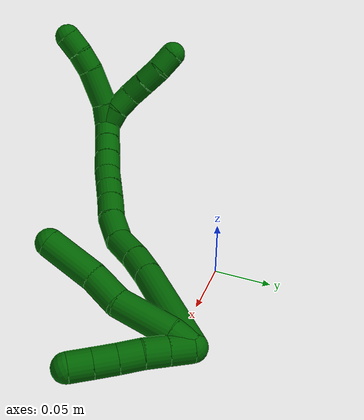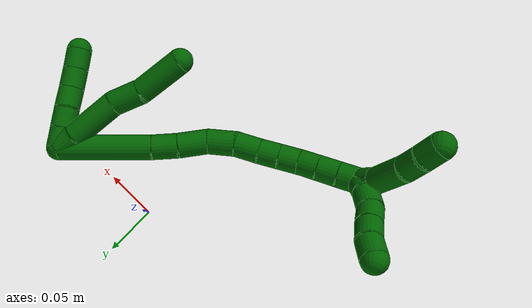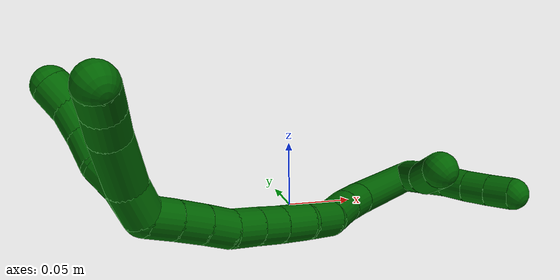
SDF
<sdf version="1.7">
 <world name="default">
  <model name="6">
   <static>0</static>
   <link name="6">
    <collision name="collision-cylinder-e_1_2_8">
     <pose>0.001683 0.008391 0.00524 -1.01253 0.168543 -0.093605</pose>
     <geometry><cylinder><radius>0.0125</radius><length>0.02007</length></cylinder></geometry>
     <surface>
      <friction><ode><mu>1.16</mu><mu2>1.16</mu2><slip1>0</slip1><slip2>0</slip2></ode></friction>
      <contact><ode><kp>1e+06</kp><kd>1</kd><max_vel>0</max_vel><min_depth>0.001</min_depth></ode></contact>
     </surface>
    </collision>
    <visual name="visual-cylinder-e_1_2_8">
     <pose>0.001683 0.008391 0.00524 -1.01253 0.168543 -0.093605</pose>
     <geometry><cylinder><radius>0.0125</radius><length>0.02007</length></cylinder></geometry>
     <material><ambient>0 0.392157 0.003922 1</ambient></material>
    </visual>
    <collision name="collision-cylinder-e_2_8_9">
     <pose>0.006981 0.0363 0.026186 -0.893214 0.143281 -0.068704</pose>
     <geometry><cylinder><radius>0.0125</radius><length>0.050624</length></cylinder></geometry>
     <surface>
      <friction><ode><mu>1.16</mu><mu2>1.16</mu2><slip1>0</slip1><slip2>0</slip2></ode></friction>
      <contact><ode><kp>1e+06</kp><kd>1</kd><max_vel>0</max_vel><min_depth>0.001</min_depth></ode></contact>
     </surface>
    </collision>
    <visual name="visual-cylinder-e_2_8_9">
     <pose>0.006981 0.0363 0.026186 -0.893214 0.143281 -0.068704</pose>
     <geometry><cylinder><radius>0.0125</radius><length>0.050624</length></cylinder></geometry>
     <material><ambient>0 0.392157 0.003922 1</ambient></material>
    </visual>
    <collision name="collision-cylinder-e_3_9_10">
     <pose>0.010427 0.070017 0.047995 -1.16485 -0.01087 0.00716</pose>
     <geometry><cylinder><radius>0.0125</radius><length>0.030912</length></cylinder></geometry>
     <surface>
      <friction><ode><mu>1.16</mu><mu2>1.16</mu2><slip1>0</slip1><slip2>0</slip2></ode></friction>
      <contact><ode><kp>1e+06</kp><kd>1</kd><max_vel>0</max_vel><min_depth>0.001</min_depth></ode></contact>
     </surface>
    </collision>
    <visual name="visual-cylinder-e_3_9_10">
     <pose>0.010427 0.070017 0.047995 -1.16485 -0.01087 0.00716</pose>
     <geometry><cylinder><radius>0.0125</radius><length>0.030912</length></cylinder></geometry>
     <material><ambient>0 0.392157 0.003922 1</ambient></material>
    </visual>
    <collision name="collision-cylinder-e_4_10_6">
     <pose>0.015096 0.104767 0.065921 -1.04873 0.201229 -0.116647</pose>
     <geometry><cylinder><radius>0.0125</radius><length>0.048394</length></cylinder></geometry>
     <surface>
      <friction><ode><mu>1.16</mu><mu2>1.16</mu2><slip1>0</slip1><slip2>0</slip2></ode></friction>
      <contact><ode><kp>1e+06</kp><kd>1</kd><max_vel>0</max_vel><min_depth>0.001</min_depth></ode></contact>
     </surface>
    </collision>
    <visual name="visual-cylinder-e_4_10_6">
     <pose>0.015096 0.104767 0.065921 -1.04873 0.201229 -0.116647</pose>
     <geometry><cylinder><radius>0.0125</radius><length>0.048394</length></cylinder></geometry>
     <material><ambient>0 0.392157 0.003922 1</ambient></material>
    </visual>
    <collision name="collision-cylinder-e_1_2_11">
     <pose>0.005129 0.001832 0.008387 -0.215059 0.53853 -0.059561</pose>
     <geometry><cylinder><radius>0.0125</radius><length>0.02</length></cylinder></geometry>
     <surface>
      <friction><ode><mu>1.16</mu><mu2>1.16</mu2><slip1>0</slip1><slip2>0</slip2></ode></friction>
      <contact><ode><kp>1e+06</kp><kd>1</kd><max_vel>0</max_vel><min_depth>0.001</min_depth></ode></contact>
     </surface>
    </collision>
    <visual name="visual-cylinder-e_1_2_11">
     <pose>0.005129 0.001832 0.008387 -0.215059 0.53853 -0.059561</pose>
     <geometry><cylinder><radius>0.0125</radius><length>0.02</length></cylinder></geometry>
     <material><ambient>0 0.392157 0.003922 1</ambient></material>
    </visual>
    <collision name="collision-cylinder-e_2_11_12">
     <pose>0.015364 0.005488 0.025176 -0.213793 0.535906 -0.058906</pose>
     <geometry><cylinder><radius>0.0125</radius><length>0.02</length></cylinder></geometry>
     <surface>
      <friction><ode><mu>1.16</mu><mu2>1.16</mu2><slip1>0</slip1><slip2>0</slip2></ode></friction>
      <contact><ode><kp>1e+06</kp><kd>1</kd><max_vel>0</max_vel><min_depth>0.001</min_depth></ode></contact>
     </surface>
    </collision>
    <visual name="visual-cylinder-e_2_11_12">
     <pose>0.015364 0.005488 0.025176 -0.213793 0.535906 -0.058906</pose>
     <geometry><cylinder><radius>0.0125</radius><length>0.02</length></cylinder></geometry>
     <material><ambient>0 0.392157 0.003922 1</ambient></material>
    </visual>
    <collision name="collision-cylinder-e_3_12_13">
     <pose>0.024805 0.008621 0.042494 -0.145705 0.448389 -0.033281</pose>
     <geometry><cylinder><radius>0.0125</radius><length>0.02</length></cylinder></geometry>
     <surface>
      <friction><ode><mu>1.16</mu><mu2>1.16</mu2><slip1>0</slip1><slip2>0</slip2></ode></friction>
      <contact><ode><kp>1e+06</kp><kd>1</kd><max_vel>0</max_vel><min_depth>0.001</min_depth></ode></contact>
     </surface>
    </collision>
    <visual name="visual-cylinder-e_3_12_13">
     <pose>0.024805 0.008621 0.042494 -0.145705 0.448389 -0.033281</pose>
     <geometry><cylinder><radius>0.0125</radius><length>0.02</length></cylinder></geometry>
     <material><ambient>0 0.392157 0.003922 1</ambient></material>
    </visual>
    <collision name="collision-cylinder-e_4_13_14">
     <pose>0.03388 0.011412 0.06009 -0.169158 0.493758 -0.042727</pose>
     <geometry><cylinder><radius>0.0125</radius><length>0.02</length></cylinder></geometry>
     <surface>
      <friction><ode><mu>1.16</mu><mu2>1.16</mu2><slip1>0</slip1><slip2>0</slip2></ode></friction>
      <contact><ode><kp>1e+06</kp><kd>1</kd><max_vel>0</max_vel><min_depth>0.001</min_depth></ode></contact>
     </surface>
    </collision>
    <visual name="visual-cylinder-e_4_13_14">
     <pose>0.03388 0.011412 0.06009 -0.169158 0.493758 -0.042727</pose>
     <geometry><cylinder><radius>0.0125</radius><length>0.02</length></cylinder></geometry>
     <material><ambient>0 0.392157 0.003922 1</ambient></material>
    </visual>
    <collision name="collision-cylinder-e_5_14_5">
     <pose>0.043562 0.0144 0.077332 -0.174076 0.517018 -0.046138</pose>
     <geometry><cylinder><radius>0.0125</radius><length>0.02</length></cylinder></geometry>
     <surface>
      <friction><ode><mu>1.16</mu><mu2>1.16</mu2><slip1>0</slip1><slip2>0</slip2></ode></friction>
      <contact><ode><kp>1e+06</kp><kd>1</kd><max_vel>0</max_vel><min_depth>0.001</min_depth></ode></contact>
     </surface>
    </collision>
    <visual name="visual-cylinder-e_5_14_5">
     <pose>0.043562 0.0144 0.077332 -0.174076 0.517018 -0.046138</pose>
     <geometry><cylinder><radius>0.0125</radius><length>0.02</length></cylinder></geometry>
     <material><ambient>0 0.392157 0.003922 1</ambient></material>
    </visual>
    <collision name="collision-cylinder-e_1_2_15">
     <pose>-0.018686 0.04041 0.0121 -1.27986 -0.416991 0.312433</pose>
     <geometry><cylinder><radius>0.0125</radius><length>0.092272</length></cylinder></geometry>
     <surface>
      <friction><ode><mu>1.16</mu><mu2>1.16</mu2><slip1>0</slip1><slip2>0</slip2></ode></friction>
      <contact><ode><kp>1e+06</kp><kd>1</kd><max_vel>0</max_vel><min_depth>0.001</min_depth></ode></contact>
     </surface>
    </collision>
    <visual name="visual-cylinder-e_1_2_15">
     <pose>-0.018686 0.04041 0.0121 -1.27986 -0.416991 0.312433</pose>
     <geometry><cylinder><radius>0.0125</radius><length>0.092272</length></cylinder></geometry>
     <material><ambient>0 0.392157 0.003922 1</ambient></material>
    </visual>
    <collision name="collision-cylinder-e_2_15_16">
     <pose>-0.04207 0.091872 0.028157 -1.22697 -0.380763 0.269742</pose>
     <geometry><cylinder><radius>0.0125</radius><length>0.025289</length></cylinder></geometry>
     <surface>
      <friction><ode><mu>1.16</mu><mu2>1.16</mu2><slip1>0</slip1><slip2>0</slip2></ode></friction>
      <contact><ode><kp>1e+06</kp><kd>1</kd><max_vel>0</max_vel><min_depth>0.001</min_depth></ode></contact>
     </surface>
    </collision>
    <visual name="visual-cylinder-e_2_15_16">
     <pose>-0.04207 0.091872 0.028157 -1.22697 -0.380763 0.269742</pose>
     <geometry><cylinder><radius>0.0125</radius><length>0.025289</length></cylinder></geometry>
     <material><ambient>0 0.392157 0.003922 1</ambient></material>
    </visual>
    <collision name="collision-cylinder-e_3_16_17">
     <pose>-0.051864 0.115431 0.038073 -1.12623 -0.352371 0.223841</pose>
     <geometry><cylinder><radius>0.0125</radius><length>0.029523</length></cylinder></geometry>
     <surface>
      <friction><ode><mu>1.16</mu><mu2>1.16</mu2><slip1>0</slip1><slip2>0</slip2></ode></friction>
      <contact><ode><kp>1e+06</kp><kd>1</kd><max_vel>0</max_vel><min_depth>0.001</min_depth></ode></contact>
     </surface>
    </collision>
    <visual name="visual-cylinder-e_3_16_17">
     <pose>-0.051864 0.115431 0.038073 -1.12623 -0.352371 0.223841</pose>
     <geometry><cylinder><radius>0.0125</radius><length>0.029523</length></cylinder></geometry>
     <material><ambient>0 0.392157 0.003922 1</ambient></material>
    </visual>
    <collision name="collision-cylinder-e_4_17_18">
     <pose>-0.062039 0.141016 0.045382 -1.46787 -0.368754 0.333326</pose>
     <geometry><cylinder><radius>0.0125</radius><length>0.028189</length></cylinder></geometry>
     <surface>
      <friction><ode><mu>1.16</mu><mu2>1.16</mu2><slip1>0</slip1><slip2>0</slip2></ode></friction>
      <contact><ode><kp>1e+06</kp><kd>1</kd><max_vel>0</max_vel><min_depth>0.001</min_depth></ode></contact>
     </surface>
    </collision>
    <visual name="visual-cylinder-e_4_17_18">
     <pose>-0.062039 0.141016 0.045382 -1.46787 -0.368754 0.333326</pose>
     <geometry><cylinder><radius>0.0125</radius><length>0.028189</length></cylinder></geometry>
     <material><ambient>0 0.392157 0.003922 1</ambient></material>
    </visual>
    <collision name="collision-cylinder-e_5_18_19">
     <pose>-0.072978 0.164621 0.046047 -1.63579 -0.506963 0.539451</pose>
     <geometry><cylinder><radius>0.0125</radius><length>0.024136</length></cylinder></geometry>
     <surface>
      <friction><ode><mu>1.16</mu><mu2>1.16</mu2><slip1>0</slip1><slip2>0</slip2></ode></friction>
      <contact><ode><kp>1e+06</kp><kd>1</kd><max_vel>0</max_vel><min_depth>0.001</min_depth></ode></contact>
     </surface>
    </collision>
    <visual name="visual-cylinder-e_5_18_19">
     <pose>-0.072978 0.164621 0.046047 -1.63579 -0.506963 0.539451</pose>
     <geometry><cylinder><radius>0.0125</radius><length>0.024136</length></cylinder></geometry>
     <material><ambient>0 0.392157 0.003922 1</ambient></material>
    </visual>
    <collision name="collision-cylinder-e_6_19_20">
     <pose>-0.083287 0.184139 0.044869 -1.62558 -0.458927 0.48381</pose>
     <geometry><cylinder><radius>0.0125</radius><length>0.020086</length></cylinder></geometry>
     <surface>
      <friction><ode><mu>1.16</mu><mu2>1.16</mu2><slip1>0</slip1><slip2>0</slip2></ode></friction>
      <contact><ode><kp>1e+06</kp><kd>1</kd><max_vel>0</max_vel><min_depth>0.001</min_depth></ode></contact>
     </surface>
    </collision>
    <visual name="visual-cylinder-e_6_19_20">
     <pose>-0.083287 0.184139 0.044869 -1.62558 -0.458927 0.48381</pose>
     <geometry><cylinder><radius>0.0125</radius><length>0.020086</length></cylinder></geometry>
     <material><ambient>0 0.392157 0.003922 1</ambient></material>
    </visual>
    <collision name="collision-cylinder-e_7_20_21">
     <pose>-0.092347 0.202163 0.043978 -1.61483 -0.471648 0.492059</pose>
     <geometry><cylinder><radius>0.0125</radius><length>0.0203</length></cylinder></geometry>
     <surface>
      <friction><ode><mu>1.16</mu><mu2>1.16</mu2><slip1>0</slip1><slip2>0</slip2></ode></friction>
      <contact><ode><kp>1e+06</kp><kd>1</kd><max_vel>0</max_vel><min_depth>0.001</min_depth></ode></contact>
     </surface>
    </collision>
    <visual name="visual-cylinder-e_7_20_21">
     <pose>-0.092347 0.202163 0.043978 -1.61483 -0.471648 0.492059</pose>
     <geometry><cylinder><radius>0.0125</radius><length>0.0203</length></cylinder></geometry>
     <material><ambient>0 0.392157 0.003922 1</ambient></material>
    </visual>
    <collision name="collision-cylinder-e_8_21_22">
     <pose>-0.100082 0.220488 0.041542 -1.78673 -0.317256 0.392611</pose>
     <geometry><cylinder><radius>0.0125</radius><length>0.020025</length></cylinder></geometry>
     <surface>
      <friction><ode><mu>1.16</mu><mu2>1.16</mu2><slip1>0</slip1><slip2>0</slip2></ode></friction>
      <contact><ode><kp>1e+06</kp><kd>1</kd><max_vel>0</max_vel><min_depth>0.001</min_depth></ode></contact>
     </surface>
    </collision>
    <visual name="visual-cylinder-e_8_21_22">
     <pose>-0.100082 0.220488 0.041542 -1.78673 -0.317256 0.392611</pose>
     <geometry><cylinder><radius>0.0125</radius><length>0.020025</length></cylinder></geometry>
     <material><ambient>0 0.392157 0.003922 1</ambient></material>
    </visual>
    <collision name="collision-cylinder-e_9_22_23">
     <pose>-0.106528 0.239051 0.03757 -1.77642 -0.337379 0.413017</pose>
     <geometry><cylinder><radius>0.0125</radius><length>0.020071</length></cylinder></geometry>
     <surface>
      <friction><ode><mu>1.16</mu><mu2>1.16</mu2><slip1>0</slip1><slip2>0</slip2></ode></friction>
      <contact><ode><kp>1e+06</kp><kd>1</kd><max_vel>0</max_vel><min_depth>0.001</min_depth></ode></contact>
     </surface>
    </collision>
    <visual name="visual-cylinder-e_9_22_23">
     <pose>-0.106528 0.239051 0.03757 -1.77642 -0.337379 0.413017</pose>
     <geometry><cylinder><radius>0.0125</radius><length>0.020071</length></cylinder></geometry>
     <material><ambient>0 0.392157 0.003922 1</ambient></material>
    </visual>
    <collision name="collision-cylinder-e_10_23_1">
     <pose>-0.113381 0.257561 0.033837 -1.76309 -0.358868 0.433302</pose>
     <geometry><cylinder><radius>0.0125</radius><length>0.020109</length></cylinder></geometry>
     <surface>
      <friction><ode><mu>1.16</mu><mu2>1.16</mu2><slip1>0</slip1><slip2>0</slip2></ode></friction>
      <contact><ode><kp>1e+06</kp><kd>1</kd><max_vel>0</max_vel><min_depth>0.001</min_depth></ode></contact>
     </surface>
    </collision>
    <visual name="visual-cylinder-e_10_23_1">
     <pose>-0.113381 0.257561 0.033837 -1.76309 -0.358868 0.433302</pose>
     <geometry><cylinder><radius>0.0125</radius><length>0.020109</length></cylinder></geometry>
     <material><ambient>0 0.392157 0.003922 1</ambient></material>
    </visual>
    <collision name="collision-cylinder-e_1_1_24">
     <pose>-0.114646 0.271594 0.023559 -2.6272 0.228659 -0.823275</pose>
     <geometry><cylinder><radius>0.0125</radius><length>0.02</length></cylinder></geometry>
     <surface>
      <friction><ode><mu>1.16</mu><mu2>1.16</mu2><slip1>0</slip1><slip2>0</slip2></ode></friction>
      <contact><ode><kp>1e+06</kp><kd>1</kd><max_vel>0</max_vel><min_depth>0.001</min_depth></ode></contact>
     </surface>
    </collision>
    <visual name="visual-cylinder-e_1_1_24">
     <pose>-0.114646 0.271594 0.023559 -2.6272 0.228659 -0.823275</pose>
     <geometry><cylinder><radius>0.0125</radius><length>0.02</length></cylinder></geometry>
     <material><ambient>0 0.392157 0.003922 1</ambient></material>
    </visual>
    <collision name="collision-cylinder-e_2_24_25">
     <pose>-0.112497 0.280011 0.005761 -2.77056 -0.011762 0.062652</pose>
     <geometry><cylinder><radius>0.0125</radius><length>0.02</length></cylinder></geometry>
     <surface>
      <friction><ode><mu>1.16</mu><mu2>1.16</mu2><slip1>0</slip1><slip2>0</slip2></ode></friction>
      <contact><ode><kp>1e+06</kp><kd>1</kd><max_vel>0</max_vel><min_depth>0.001</min_depth></ode></contact>
     </surface>
    </collision>
    <visual name="visual-cylinder-e_2_24_25">
     <pose>-0.112497 0.280011 0.005761 -2.77056 -0.011762 0.062652</pose>
     <geometry><cylinder><radius>0.0125</radius><length>0.02</length></cylinder></geometry>
     <material><ambient>0 0.392157 0.003922 1</ambient></material>
    </visual>
    <collision name="collision-cylinder-e_3_25_26">
     <pose>-0.110504 0.285087 -0.013225 -2.99265 0.212663 -1.92148</pose>
     <geometry><cylinder><radius>0.0125</radius><length>0.02</length></cylinder></geometry>
     <surface>
      <friction><ode><mu>1.16</mu><mu2>1.16</mu2><slip1>0</slip1><slip2>0</slip2></ode></friction>
      <contact><ode><kp>1e+06</kp><kd>1</kd><max_vel>0</max_vel><min_depth>0.001</min_depth></ode></contact>
     </surface>
    </collision>
    <visual name="visual-cylinder-e_3_25_26">
     <pose>-0.110504 0.285087 -0.013225 -2.99265 0.212663 -1.92148</pose>
     <geometry><cylinder><radius>0.0125</radius><length>0.02</length></cylinder></geometry>
     <material><ambient>0 0.392157 0.003922 1</ambient></material>
    </visual>
    <collision name="collision-cylinder-e_4_26_27">
     <pose>-0.106841 0.288421 -0.032589 -2.94984 0.15583 -1.36383</pose>
     <geometry><cylinder><radius>0.0125</radius><length>0.02</length></cylinder></geometry>
     <surface>
      <friction><ode><mu>1.16</mu><mu2>1.16</mu2><slip1>0</slip1><slip2>0</slip2></ode></friction>
      <contact><ode><kp>1e+06</kp><kd>1</kd><max_vel>0</max_vel><min_depth>0.001</min_depth></ode></contact>
     </surface>
    </collision>
    <visual name="visual-cylinder-e_4_26_27">
     <pose>-0.106841 0.288421 -0.032589 -2.94984 0.15583 -1.36383</pose>
     <geometry><cylinder><radius>0.0125</radius><length>0.02</length></cylinder></geometry>
     <material><ambient>0 0.392157 0.003922 1</ambient></material>
    </visual>
    <collision name="collision-cylinder-e_5_27_4">
     <pose>-0.105026 0.29405 -0.051555 -2.7574 0.02632 -0.135126</pose>
     <geometry><cylinder><radius>0.0125</radius><length>0.02</length></cylinder></geometry>
     <surface>
      <friction><ode><mu>1.16</mu><mu2>1.16</mu2><slip1>0</slip1><slip2>0</slip2></ode></friction>
      <contact><ode><kp>1e+06</kp><kd>1</kd><max_vel>0</max_vel><min_depth>0.001</min_depth></ode></contact>
     </surface>
    </collision>
    <visual name="visual-cylinder-e_5_27_4">
     <pose>-0.105026 0.29405 -0.051555 -2.7574 0.02632 -0.135126</pose>
     <geometry><cylinder><radius>0.0125</radius><length>0.02</length></cylinder></geometry>
     <material><ambient>0 0.392157 0.003922 1</ambient></material>
    </visual>
    <collision name="collision-cylinder-e_1_1_28">
     <pose>-0.112439 0.276348 0.028201 -1.95301 0.410114 -0.597122</pose>
     <geometry><cylinder><radius>0.0125</radius><length>0.022439</length></cylinder></geometry>
     <surface>
      <friction><ode><mu>1.16</mu><mu2>1.16</mu2><slip1>0</slip1><slip2>0</slip2></ode></friction>
      <contact><ode><kp>1e+06</kp><kd>1</kd><max_vel>0</max_vel><min_depth>0.001</min_depth></ode></contact>
     </surface>
    </collision>
    <visual name="visual-cylinder-e_1_1_28">
     <pose>-0.112439 0.276348 0.028201 -1.95301 0.410114 -0.597122</pose>
     <geometry><cylinder><radius>0.0125</radius><length>0.022439</length></cylinder></geometry>
     <material><ambient>0 0.392157 0.003922 1</ambient></material>
    </visual>
    <collision name="collision-cylinder-e_2_28_29">
     <pose>-0.098433 0.301773 0.022177 -1.70762 0.53657 -0.610969</pose>
     <geometry><cylinder><radius>0.0125</radius><length>0.037296</length></cylinder></geometry>
     <surface>
      <friction><ode><mu>1.16</mu><mu2>1.16</mu2><slip1>0</slip1><slip2>0</slip2></ode></friction>
      <contact><ode><kp>1e+06</kp><kd>1</kd><max_vel>0</max_vel><min_depth>0.001</min_depth></ode></contact>
     </surface>
    </collision>
    <visual name="visual-cylinder-e_2_28_29">
     <pose>-0.098433 0.301773 0.022177 -1.70762 0.53657 -0.610969</pose>
     <geometry><cylinder><radius>0.0125</radius><length>0.037296</length></cylinder></geometry>
     <material><ambient>0 0.392157 0.003922 1</ambient></material>
    </visual>
    <collision name="collision-cylinder-e_3_29_30">
     <pose>-0.083488 0.326183 0.020385 -1.5246 0.564787 -0.540529</pose>
     <geometry><cylinder><radius>0.0125</radius><length>0.020225</length></cylinder></geometry>
     <surface>
      <friction><ode><mu>1.16</mu><mu2>1.16</mu2><slip1>0</slip1><slip2>0</slip2></ode></friction>
      <contact><ode><kp>1e+06</kp><kd>1</kd><max_vel>0</max_vel><min_depth>0.001</min_depth></ode></contact>
     </surface>
    </collision>
    <visual name="visual-cylinder-e_3_29_30">
     <pose>-0.083488 0.326183 0.020385 -1.5246 0.564787 -0.540529</pose>
     <geometry><cylinder><radius>0.0125</radius><length>0.020225</length></cylinder></geometry>
     <material><ambient>0 0.392157 0.003922 1</ambient></material>
    </visual>
    <collision name="collision-cylinder-e_4_30_3">
     <pose>-0.073269 0.343345 0.02247 -1.37733 0.500219 -0.414493</pose>
     <geometry><cylinder><radius>0.0125</radius><length>0.02004</length></cylinder></geometry>
     <surface>
      <friction><ode><mu>1.16</mu><mu2>1.16</mu2><slip1>0</slip1><slip2>0</slip2></ode></friction>
      <contact><ode><kp>1e+06</kp><kd>1</kd><max_vel>0</max_vel><min_depth>0.001</min_depth></ode></contact>
     </surface>
    </collision>
    <visual name="visual-cylinder-e_4_30_3">
     <pose>-0.073269 0.343345 0.02247 -1.37733 0.500219 -0.414493</pose>
     <geometry><cylinder><radius>0.0125</radius><length>0.02004</length></cylinder></geometry>
     <material><ambient>0 0.392157 0.003922 1</ambient></material>
    </visual>
    <collision name="collision-sphere-3">
     <pose>-0.068464 0.351973 0.024161 0 -0 0</pose>
     <geometry><sphere><radius>0.0125</radius></sphere></geometry>
     <surface>
      <friction><ode><mu>1.16</mu><mu2>1.16</mu2><slip1>0</slip1><slip2>0</slip2></ode></friction>
      <contact><ode><kp>1e+06</kp><kd>1</kd><max_vel>0</max_vel><min_depth>0.001</min_depth></ode></contact>
     </surface>
    </collision>
    <visual name="visual-sphere-3">
     <pose>-0.068464 0.351973 0.024161 0 -0 0</pose>
     <geometry><sphere><radius>0.0125</radius></sphere></geometry>
     <material><ambient>0 0.392157 0.003922 1</ambient></material>
    </visual>
    <collision name="collision-sphere-30">
     <pose>-0.078075 0.334716 0.02078 0 -0 0</pose>
     <geometry><sphere><radius>0.0125</radius></sphere></geometry>
     <surface>
      <friction><ode><mu>1.16</mu><mu2>1.16</mu2><slip1>0</slip1><slip2>0</slip2></ode></friction>
      <contact><ode><kp>1e+06</kp><kd>1</kd><max_vel>0</max_vel><min_depth>0.001</min_depth></ode></contact>
     </surface>
    </collision>
    <visual name="visual-sphere-30">
     <pose>-0.078075 0.334716 0.02078 0 -0 0</pose>
     <geometry><sphere><radius>0.0125</radius></sphere></geometry>
     <material><ambient>0 0.392157 0.003922 1</ambient></material>
    </visual>
    <collision name="collision-sphere-29">
     <pose>-0.0889 0.317651 0.019991 0 -0 0</pose>
     <geometry><sphere><radius>0.0125</radius></sphere></geometry>
     <surface>
      <friction><ode><mu>1.16</mu><mu2>1.16</mu2><slip1>0</slip1><slip2>0</slip2></ode></friction>
      <contact><ode><kp>1e+06</kp><kd>1</kd><max_vel>0</max_vel><min_depth>0.001</min_depth></ode></contact>
     </surface>
    </collision>
    <visual name="visual-sphere-29">
     <pose>-0.0889 0.317651 0.019991 0 -0 0</pose>
     <geometry><sphere><radius>0.0125</radius></sphere></geometry>
     <material><ambient>0 0.392157 0.003922 1</ambient></material>
    </visual>
    <collision name="collision-sphere-28">
     <pose>-0.107966 0.285895 0.024363 0 -0 0</pose>
     <geometry><sphere><radius>0.0125</radius></sphere></geometry>
     <surface>
      <friction><ode><mu>1.16</mu><mu2>1.16</mu2><slip1>0</slip1><slip2>0</slip2></ode></friction>
      <contact><ode><kp>1e+06</kp><kd>1</kd><max_vel>0</max_vel><min_depth>0.001</min_depth></ode></contact>
     </surface>
    </collision>
    <visual name="visual-sphere-28">
     <pose>-0.107966 0.285895 0.024363 0 -0 0</pose>
     <geometry><sphere><radius>0.0125</radius></sphere></geometry>
     <material><ambient>0 0.392157 0.003922 1</ambient></material>
    </visual>
    <collision name="collision-sphere-4">
     <pose>-0.104763 0.297797 -0.060822 0 -0 0</pose>
     <geometry><sphere><radius>0.0125</radius></sphere></geometry>
     <surface>
      <friction><ode><mu>1.16</mu><mu2>1.16</mu2><slip1>0</slip1><slip2>0</slip2></ode></friction>
      <contact><ode><kp>1e+06</kp><kd>1</kd><max_vel>0</max_vel><min_depth>0.001</min_depth></ode></contact>
     </surface>
    </collision>
    <visual name="visual-sphere-4">
     <pose>-0.104763 0.297797 -0.060822 0 -0 0</pose>
     <geometry><sphere><radius>0.0125</radius></sphere></geometry>
     <material><ambient>0 0.392157 0.003922 1</ambient></material>
    </visual>
    <collision name="collision-sphere-27">
     <pose>-0.105289 0.290303 -0.042287 0 -0 0</pose>
     <geometry><sphere><radius>0.0125</radius></sphere></geometry>
     <surface>
      <friction><ode><mu>1.16</mu><mu2>1.16</mu2><slip1>0</slip1><slip2>0</slip2></ode></friction>
      <contact><ode><kp>1e+06</kp><kd>1</kd><max_vel>0</max_vel><min_depth>0.001</min_depth></ode></contact>
     </surface>
    </collision>
    <visual name="visual-sphere-27">
     <pose>-0.105289 0.290303 -0.042287 0 -0 0</pose>
     <geometry><sphere><radius>0.0125</radius></sphere></geometry>
     <material><ambient>0 0.392157 0.003922 1</ambient></material>
    </visual>
    <collision name="collision-sphere-26">
     <pose>-0.108393 0.286538 -0.022891 0 -0 0</pose>
     <geometry><sphere><radius>0.0125</radius></sphere></geometry>
     <surface>
      <friction><ode><mu>1.16</mu><mu2>1.16</mu2><slip1>0</slip1><slip2>0</slip2></ode></friction>
      <contact><ode><kp>1e+06</kp><kd>1</kd><max_vel>0</max_vel><min_depth>0.001</min_depth></ode></contact>
     </surface>
    </collision>
    <visual name="visual-sphere-26">
     <pose>-0.108393 0.286538 -0.022891 0 -0 0</pose>
     <geometry><sphere><radius>0.0125</radius></sphere></geometry>
     <material><ambient>0 0.392157 0.003922 1</ambient></material>
    </visual>
    <collision name="collision-sphere-25">
     <pose>-0.112614 0.283637 -0.003558 0 -0 0</pose>
     <geometry><sphere><radius>0.0125</radius></sphere></geometry>
     <surface>
      <friction><ode><mu>1.16</mu><mu2>1.16</mu2><slip1>0</slip1><slip2>0</slip2></ode></friction>
      <contact><ode><kp>1e+06</kp><kd>1</kd><max_vel>0</max_vel><min_depth>0.001</min_depth></ode></contact>
     </surface>
    </collision>
    <visual name="visual-sphere-25">
     <pose>-0.112614 0.283637 -0.003558 0 -0 0</pose>
     <geometry><sphere><radius>0.0125</radius></sphere></geometry>
     <material><ambient>0 0.392157 0.003922 1</ambient></material>
    </visual>
    <collision name="collision-sphere-24">
     <pose>-0.112379 0.276386 0.01508 0 -0 0</pose>
     <geometry><sphere><radius>0.0125</radius></sphere></geometry>
     <surface>
      <friction><ode><mu>1.16</mu><mu2>1.16</mu2><slip1>0</slip1><slip2>0</slip2></ode></friction>
      <contact><ode><kp>1e+06</kp><kd>1</kd><max_vel>0</max_vel><min_depth>0.001</min_depth></ode></contact>
     </surface>
    </collision>
    <visual name="visual-sphere-24">
     <pose>-0.112379 0.276386 0.01508 0 -0 0</pose>
     <geometry><sphere><radius>0.0125</radius></sphere></geometry>
     <material><ambient>0 0.392157 0.003922 1</ambient></material>
    </visual>
    <collision name="collision-sphere-1">
     <pose>-0.116912 0.266802 0.032038 0 -0 0</pose>
     <geometry><sphere><radius>0.0125</radius></sphere></geometry>
     <surface>
      <friction><ode><mu>1.16</mu><mu2>1.16</mu2><slip1>0</slip1><slip2>0</slip2></ode></friction>
      <contact><ode><kp>1e+06</kp><kd>1</kd><max_vel>0</max_vel><min_depth>0.001</min_depth></ode></contact>
     </surface>
    </collision>
    <visual name="visual-sphere-1">
     <pose>-0.116912 0.266802 0.032038 0 -0 0</pose>
     <geometry><sphere><radius>0.0125</radius></sphere></geometry>
     <material><ambient>0 0.392157 0.003922 1</ambient></material>
    </visual>
    <collision name="collision-sphere-23">
     <pose>-0.10985 0.248321 0.035636 0 -0 0</pose>
     <geometry><sphere><radius>0.0125</radius></sphere></geometry>
     <surface>
      <friction><ode><mu>1.16</mu><mu2>1.16</mu2><slip1>0</slip1><slip2>0</slip2></ode></friction>
      <contact><ode><kp>1e+06</kp><kd>1</kd><max_vel>0</max_vel><min_depth>0.001</min_depth></ode></contact>
     </surface>
    </collision>
    <visual name="visual-sphere-23">
     <pose>-0.10985 0.248321 0.035636 0 -0 0</pose>
     <geometry><sphere><radius>0.0125</radius></sphere></geometry>
     <material><ambient>0 0.392157 0.003922 1</ambient></material>
    </visual>
    <collision name="collision-sphere-22">
     <pose>-0.103206 0.22978 0.039504 0 -0 0</pose>
     <geometry><sphere><radius>0.0125</radius></sphere></geometry>
     <surface>
      <friction><ode><mu>1.16</mu><mu2>1.16</mu2><slip1>0</slip1><slip2>0</slip2></ode></friction>
      <contact><ode><kp>1e+06</kp><kd>1</kd><max_vel>0</max_vel><min_depth>0.001</min_depth></ode></contact>
     </surface>
    </collision>
    <visual name="visual-sphere-22">
     <pose>-0.103206 0.22978 0.039504 0 -0 0</pose>
     <geometry><sphere><radius>0.0125</radius></sphere></geometry>
     <material><ambient>0 0.392157 0.003922 1</ambient></material>
    </visual>
    <collision name="collision-sphere-21">
     <pose>-0.096959 0.211196 0.04358 0 -0 0</pose>
     <geometry><sphere><radius>0.0125</radius></sphere></geometry>
     <surface>
      <friction><ode><mu>1.16</mu><mu2>1.16</mu2><slip1>0</slip1><slip2>0</slip2></ode></friction>
      <contact><ode><kp>1e+06</kp><kd>1</kd><max_vel>0</max_vel><min_depth>0.001</min_depth></ode></contact>
     </surface>
    </collision>
    <visual name="visual-sphere-21">
     <pose>-0.096959 0.211196 0.04358 0 -0 0</pose>
     <geometry><sphere><radius>0.0125</radius></sphere></geometry>
     <material><ambient>0 0.392157 0.003922 1</ambient></material>
    </visual>
    <collision name="collision-sphere-11">
     <pose>0.010257 0.003664 0.016774 0 -0 0</pose>
     <geometry><sphere><radius>0.0125</radius></sphere></geometry>
     <surface>
      <friction><ode><mu>1.16</mu><mu2>1.16</mu2><slip1>0</slip1><slip2>0</slip2></ode></friction>
      <contact><ode><kp>1e+06</kp><kd>1</kd><max_vel>0</max_vel><min_depth>0.001</min_depth></ode></contact>
     </surface>
    </collision>
    <visual name="visual-sphere-11">
     <pose>0.010257 0.003664 0.016774 0 -0 0</pose>
     <geometry><sphere><radius>0.0125</radius></sphere></geometry>
     <material><ambient>0 0.392157 0.003922 1</ambient></material>
    </visual>
    <collision name="collision-sphere-6">
     <pose>0.019932 0.125317 0.077744 0 -0 0</pose>
     <geometry><sphere><radius>0.0125</radius></sphere></geometry>
     <surface>
      <friction><ode><mu>1.16</mu><mu2>1.16</mu2><slip1>0</slip1><slip2>0</slip2></ode></friction>
      <contact><ode><kp>1e+06</kp><kd>1</kd><max_vel>0</max_vel><min_depth>0.001</min_depth></ode></contact>
     </surface>
    </collision>
    <visual name="visual-sphere-6">
     <pose>0.019932 0.125317 0.077744 0 -0 0</pose>
     <geometry><sphere><radius>0.0125</radius></sphere></geometry>
     <material><ambient>0 0.392157 0.003922 1</ambient></material>
    </visual>
    <collision name="collision-sphere-10">
     <pose>0.010259 0.084216 0.054098 0 -0 0</pose>
     <geometry><sphere><radius>0.0125</radius></sphere></geometry>
     <surface>
      <friction><ode><mu>1.16</mu><mu2>1.16</mu2><slip1>0</slip1><slip2>0</slip2></ode></friction>
      <contact><ode><kp>1e+06</kp><kd>1</kd><max_vel>0</max_vel><min_depth>0.001</min_depth></ode></contact>
     </surface>
    </collision>
    <visual name="visual-sphere-10">
     <pose>0.010259 0.084216 0.054098 0 -0 0</pose>
     <geometry><sphere><radius>0.0125</radius></sphere></geometry>
     <material><ambient>0 0.392157 0.003922 1</ambient></material>
    </visual>
    <collision name="collision-sphere-9">
     <pose>0.010595 0.055818 0.041892 0 -0 0</pose>
     <geometry><sphere><radius>0.0125</radius></sphere></geometry>
     <surface>
      <friction><ode><mu>1.16</mu><mu2>1.16</mu2><slip1>0</slip1><slip2>0</slip2></ode></friction>
      <contact><ode><kp>1e+06</kp><kd>1</kd><max_vel>0</max_vel><min_depth>0.001</min_depth></ode></contact>
     </surface>
    </collision>
    <visual name="visual-sphere-9">
     <pose>0.010595 0.055818 0.041892 0 -0 0</pose>
     <geometry><sphere><radius>0.0125</radius></sphere></geometry>
     <material><ambient>0 0.392157 0.003922 1</ambient></material>
    </visual>
    <collision name="collision-sphere-2">
     <geometry><sphere><radius>0.0125</radius></sphere></geometry>
     <surface>
      <friction><ode><mu>1.16</mu><mu2>1.16</mu2><slip1>0</slip1><slip2>0</slip2></ode></friction>
      <contact><ode><kp>1e+06</kp><kd>1</kd><max_vel>0</max_vel><min_depth>0.001</min_depth></ode></contact>
     </surface>
    </collision>
    <visual name="visual-sphere-2">
     <geometry><sphere><radius>0.0125</radius></sphere></geometry>
     <material><ambient>0 0.392157 0.003922 1</ambient></material>
    </visual>
    <collision name="collision-sphere-19">
     <pose>-0.078838 0.175149 0.045362 0 -0 0</pose>
     <geometry><sphere><radius>0.0125</radius></sphere></geometry>
     <surface>
      <friction><ode><mu>1.16</mu><mu2>1.16</mu2><slip1>0</slip1><slip2>0</slip2></ode></friction>
      <contact><ode><kp>1e+06</kp><kd>1</kd><max_vel>0</max_vel><min_depth>0.001</min_depth></ode></contact>
     </surface>
    </collision>
    <visual name="visual-sphere-19">
     <pose>-0.078838 0.175149 0.045362 0 -0 0</pose>
     <geometry><sphere><radius>0.0125</radius></sphere></geometry>
     <material><ambient>0 0.392157 0.003922 1</ambient></material>
    </visual>
    <collision name="collision-sphere-8">
     <pose>0.003367 0.016782 0.010481 0 -0 0</pose>
     <geometry><sphere><radius>0.0125</radius></sphere></geometry>
     <surface>
      <friction><ode><mu>1.16</mu><mu2>1.16</mu2><slip1>0</slip1><slip2>0</slip2></ode></friction>
      <contact><ode><kp>1e+06</kp><kd>1</kd><max_vel>0</max_vel><min_depth>0.001</min_depth></ode></contact>
     </surface>
    </collision>
    <visual name="visual-sphere-8">
     <pose>0.003367 0.016782 0.010481 0 -0 0</pose>
     <geometry><sphere><radius>0.0125</radius></sphere></geometry>
     <material><ambient>0 0.392157 0.003922 1</ambient></material>
    </visual>
    <collision name="collision-sphere-12">
     <pose>0.02047 0.007312 0.033578 0 -0 0</pose>
     <geometry><sphere><radius>0.0125</radius></sphere></geometry>
     <surface>
      <friction><ode><mu>1.16</mu><mu2>1.16</mu2><slip1>0</slip1><slip2>0</slip2></ode></friction>
      <contact><ode><kp>1e+06</kp><kd>1</kd><max_vel>0</max_vel><min_depth>0.001</min_depth></ode></contact>
     </surface>
    </collision>
    <visual name="visual-sphere-12">
     <pose>0.02047 0.007312 0.033578 0 -0 0</pose>
     <geometry><sphere><radius>0.0125</radius></sphere></geometry>
     <material><ambient>0 0.392157 0.003922 1</ambient></material>
    </visual>
    <collision name="collision-sphere-13">
     <pose>0.02914 0.009929 0.05141 0 -0 0</pose>
     <geometry><sphere><radius>0.0125</radius></sphere></geometry>
     <surface>
      <friction><ode><mu>1.16</mu><mu2>1.16</mu2><slip1>0</slip1><slip2>0</slip2></ode></friction>
      <contact><ode><kp>1e+06</kp><kd>1</kd><max_vel>0</max_vel><min_depth>0.001</min_depth></ode></contact>
     </surface>
    </collision>
    <visual name="visual-sphere-13">
     <pose>0.02914 0.009929 0.05141 0 -0 0</pose>
     <geometry><sphere><radius>0.0125</radius></sphere></geometry>
     <material><ambient>0 0.392157 0.003922 1</ambient></material>
    </visual>
    <collision name="collision-sphere-14">
     <pose>0.038619 0.012894 0.06877 0 -0 0</pose>
     <geometry><sphere><radius>0.0125</radius></sphere></geometry>
     <surface>
      <friction><ode><mu>1.16</mu><mu2>1.16</mu2><slip1>0</slip1><slip2>0</slip2></ode></friction>
      <contact><ode><kp>1e+06</kp><kd>1</kd><max_vel>0</max_vel><min_depth>0.001</min_depth></ode></contact>
     </surface>
    </collision>
    <visual name="visual-sphere-14">
     <pose>0.038619 0.012894 0.06877 0 -0 0</pose>
     <geometry><sphere><radius>0.0125</radius></sphere></geometry>
     <material><ambient>0 0.392157 0.003922 1</ambient></material>
    </visual>
    <collision name="collision-sphere-5">
     <pose>0.048505 0.015905 0.085893 0 -0 0</pose>
     <geometry><sphere><radius>0.0125</radius></sphere></geometry>
     <surface>
      <friction><ode><mu>1.16</mu><mu2>1.16</mu2><slip1>0</slip1><slip2>0</slip2></ode></friction>
      <contact><ode><kp>1e+06</kp><kd>1</kd><max_vel>0</max_vel><min_depth>0.001</min_depth></ode></contact>
     </surface>
    </collision>
    <visual name="visual-sphere-5">
     <pose>0.048505 0.015905 0.085893 0 -0 0</pose>
     <geometry><sphere><radius>0.0125</radius></sphere></geometry>
     <material><ambient>0 0.392157 0.003922 1</ambient></material>
    </visual>
    <collision name="collision-sphere-15">
     <pose>-0.037371 0.08082 0.0242 0 -0 0</pose>
     <geometry><sphere><radius>0.0125</radius></sphere></geometry>
     <surface>
      <friction><ode><mu>1.16</mu><mu2>1.16</mu2><slip1>0</slip1><slip2>0</slip2></ode></friction>
      <contact><ode><kp>1e+06</kp><kd>1</kd><max_vel>0</max_vel><min_depth>0.001</min_depth></ode></contact>
     </surface>
    </collision>
    <visual name="visual-sphere-15">
     <pose>-0.037371 0.08082 0.0242 0 -0 0</pose>
     <geometry><sphere><radius>0.0125</radius></sphere></geometry>
     <material><ambient>0 0.392157 0.003922 1</ambient></material>
    </visual>
    <collision name="collision-sphere-16">
     <pose>-0.046769 0.102923 0.032114 0 -0 0</pose>
     <geometry><sphere><radius>0.0125</radius></sphere></geometry>
     <surface>
      <friction><ode><mu>1.16</mu><mu2>1.16</mu2><slip1>0</slip1><slip2>0</slip2></ode></friction>
      <contact><ode><kp>1e+06</kp><kd>1</kd><max_vel>0</max_vel><min_depth>0.001</min_depth></ode></contact>
     </surface>
    </collision>
    <visual name="visual-sphere-16">
     <pose>-0.046769 0.102923 0.032114 0 -0 0</pose>
     <geometry><sphere><radius>0.0125</radius></sphere></geometry>
     <material><ambient>0 0.392157 0.003922 1</ambient></material>
    </visual>
    <collision name="collision-sphere-17">
     <pose>-0.056958 0.127939 0.044031 0 -0 0</pose>
     <geometry><sphere><radius>0.0125</radius></sphere></geometry>
     <surface>
      <friction><ode><mu>1.16</mu><mu2>1.16</mu2><slip1>0</slip1><slip2>0</slip2></ode></friction>
      <contact><ode><kp>1e+06</kp><kd>1</kd><max_vel>0</max_vel><min_depth>0.001</min_depth></ode></contact>
     </surface>
    </collision>
    <visual name="visual-sphere-17">
     <pose>-0.056958 0.127939 0.044031 0 -0 0</pose>
     <geometry><sphere><radius>0.0125</radius></sphere></geometry>
     <material><ambient>0 0.392157 0.003922 1</ambient></material>
    </visual>
    <collision name="collision-sphere-18">
     <pose>-0.067119 0.154093 0.046733 0 -0 0</pose>
     <geometry><sphere><radius>0.0125</radius></sphere></geometry>
     <surface>
      <friction><ode><mu>1.16</mu><mu2>1.16</mu2><slip1>0</slip1><slip2>0</slip2></ode></friction>
      <contact><ode><kp>1e+06</kp><kd>1</kd><max_vel>0</max_vel><min_depth>0.001</min_depth></ode></contact>
     </surface>
    </collision>
    <visual name="visual-sphere-18">
     <pose>-0.067119 0.154093 0.046733 0 -0 0</pose>
     <geometry><sphere><radius>0.0125</radius></sphere></geometry>
     <material><ambient>0 0.392157 0.003922 1</ambient></material>
    </visual>
    <collision name="collision-sphere-20">
     <pose>-0.087736 0.19313 0.044376 0 -0 0</pose>
     <geometry><sphere><radius>0.0125</radius></sphere></geometry>
     <surface>
      <friction><ode><mu>1.16</mu><mu2>1.16</mu2><slip1>0</slip1><slip2>0</slip2></ode></friction>
      <contact><ode><kp>1e+06</kp><kd>1</kd><max_vel>0</max_vel><min_depth>0.001</min_depth></ode></contact>
     </surface>
    </collision>
    <visual name="visual-sphere-20">
     <pose>-0.087736 0.19313 0.044376 0 -0 0</pose>
     <geometry><sphere><radius>0.0125</radius></sphere></geometry>
     <material><ambient>0 0.392157 0.003922 1</ambient></material>
    </visual>
    <inertial>
     <pose>-0.045661 0.145328 0.027653 0 -0 0</pose>
     <mass>0.75</mass>
     <inertia>
      <ixx>0.000137</ixx>
      <ixy>0</ixy>
      <ixz>0</ixz>
      <iyy>0.000108</iyy>
      <iyz>0</iyz>
      <izz>-8.5e-05</izz>
     </inertia>
    </inertial>
   </link>
   <pose>0.107392 0.016841 0.011876 2.3386 -0.803574 -0.14617</pose>
  </model>
 </world>
</sdf>
